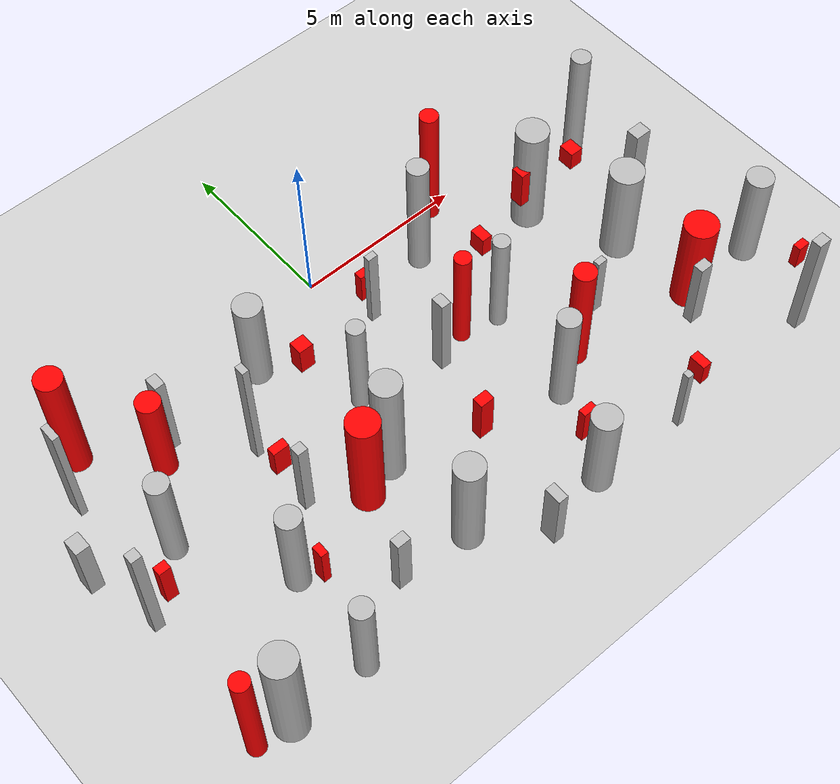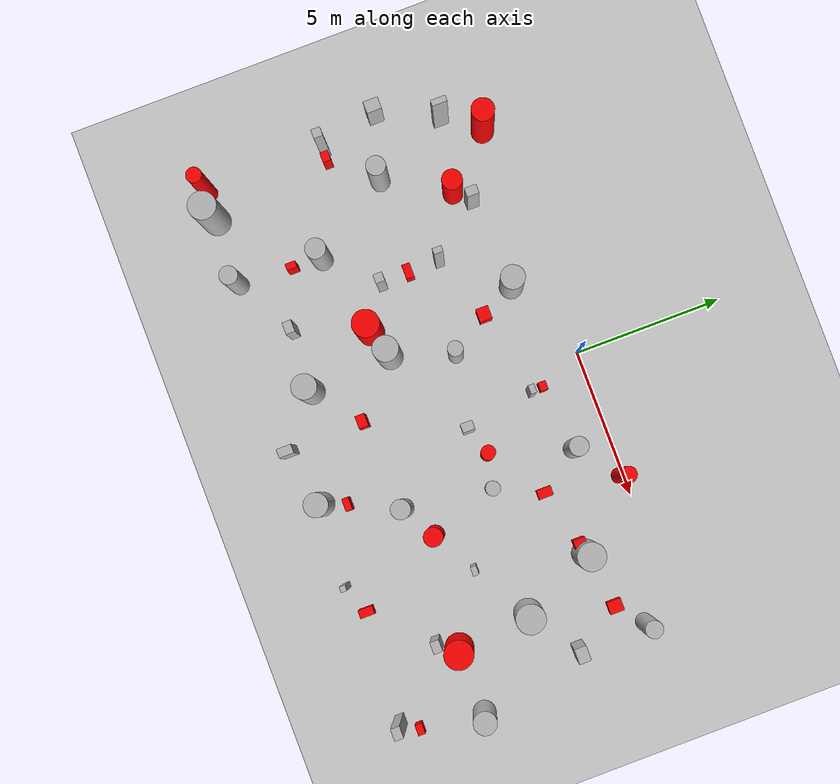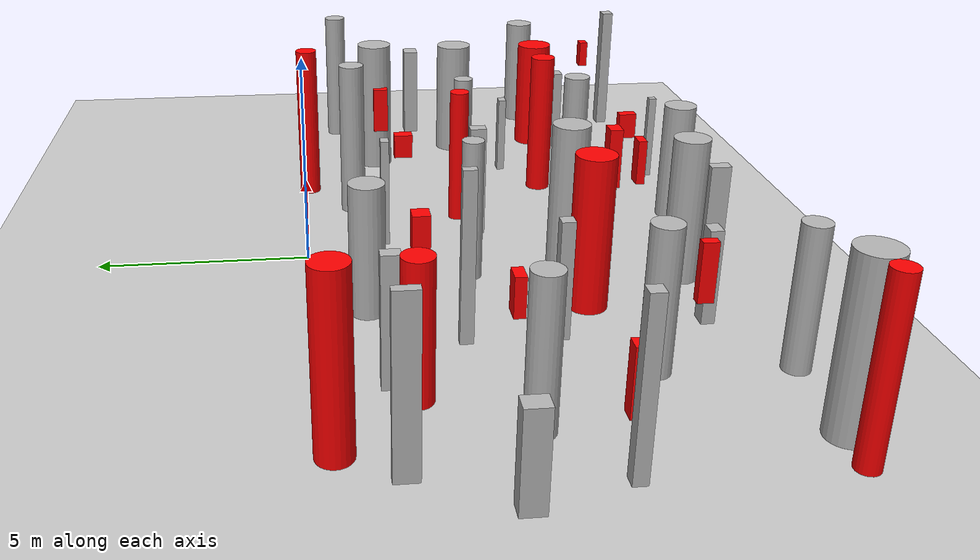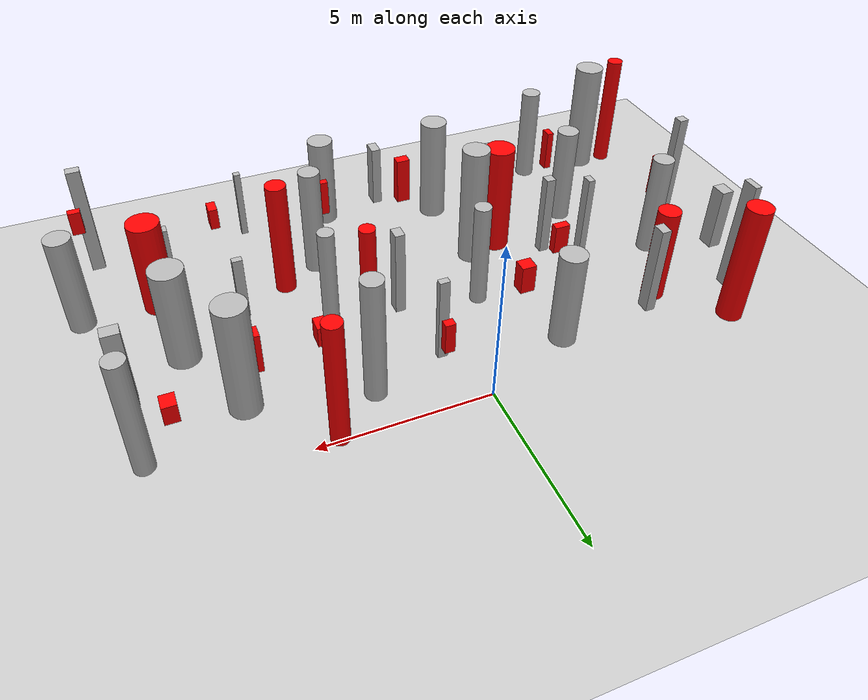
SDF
<sdf version="1.7">
 <world name="default">
  <model name="ground_plane">
   <static>1</static>
   <link name="link">
    <collision name="collision">
     <geometry><plane><normal>0 0 1</normal><size>100 100</size></plane></geometry>
     <surface>
      <contact><collide_bitmask>65535</collide_bitmask></contact>
      <friction><ode><mu>100</mu><mu2>50</mu2></ode></friction>
     </surface>
    </collision>
    <visual name="visual">
     <cast_shadows>0</cast_shadows>
     <geometry><plane><normal>0 0 1</normal><size>100 100</size></plane></geometry>
     <material>
      <script><uri>file://media/materials/scripts/gazebo.material</uri><name>Gazebo/Grey</name></script>
     </material>
    </visual>
   </link>
  </model>
  <model name="cylinder_1_0.6_0.6_4.0">
   <static>true</static>
   <pose>2.917882261333123 -1.2482557747461502 1.9818313802505148 0 0 0</pose>
   <link name="link">
    <visual name="visual">
     <geometry>
      <cylinder><radius>0.3150324556477333</radius><length>3.9636627605010295</length></cylinder>
     </geometry>
    </visual>
   </link>
  </model>
  <model name="cylinder_3_0.9_0.9_3.8">
   <static>true</static>
   <pose>-8.257414005969185 -9.595632051193485 1.8890783754749252 0 0 0</pose>
   <link name="link">
    <visual name="visual">
     <geometry>
      <cylinder><radius>0.46100364447404574</radius><length>3.7781567509498504</length></cylinder>
     </geometry>
    </visual>
   </link>
  </model>
  <model name="cylinder_5_0.6_0.6_3.5">
   <static>true</static>
   <pose>2.798420426550477 -7.132934251819072 1.760924160875036 0 0 0</pose>
   <link name="link">
    <visual name="visual">
     <geometry>
      <cylinder><radius>0.3243985819971571</radius><length>3.521848321750072</length></cylinder>
     </geometry>
    </visual>
   </link>
  </model>
  <model name="cylinder_8_0.8_0.8_3.1">
   <static>true</static>
   <pose>-2.80984198852428 -1.259360924013171 1.530112735814635 0 0 0</pose>
   <link name="link">
    <visual name="visual">
     <geometry><cylinder><radius>0.4000300146337003</radius><length>3.06022547162927</length></cylinder></geometry>
    </visual>
   </link>
  </model>
  <model name="cylinder_10_0.7_0.7_3.3">
   <static>true</static>
   <pose>-5.822464878103306 -6.773809642300074 1.626645801269891 0 0 0</pose>
   <link name="link">
    <visual name="visual">
     <geometry>
      <cylinder><radius>0.3398932318568919</radius><length>3.253291602539782</length></cylinder>
     </geometry>
    </visual>
   </link>
  </model>
  <model name="cylinder_13_0.6_0.6_3.3">
   <static>true</static>
   <pose>-7.596068775736622 -4.077196049557101 1.658991589696988 0 0 0</pose>
   <link name="link">
    <visual name="visual">
     <geometry><cylinder><radius>0.324278898354401</radius><length>3.317983179393976</length></cylinder></geometry>
    </visual>
   </link>
  </model>
  <model name="cylinder_16_0.8_0.8_3.0">
   <static>true</static>
   <pose>1.7302586962016626 -9.597849076250128 1.5023477380962735 0 0 0</pose>
   <link name="link">
    <visual name="visual">
     <geometry>
      <cylinder><radius>0.4033449610388691</radius><length>3.004695476192547</length></cylinder>
     </geometry>
    </visual>
   </link>
  </model>
  <model name="cylinder_17_0.6_0.6_3.7">
   <static>true</static>
   <pose>9.054980230339702 -1.0574924276474533 1.849739637658752 0 0 0</pose>
   <link name="link">
    <visual name="visual">
     <geometry>
      <cylinder><radius>0.2892310852565401</radius><length>3.699479275317504</length></cylinder>
     </geometry>
    </visual>
   </link>
  </model>
  <model name="cylinder_18_0.9_0.9_3.6">
   <static>true</static>
   <pose>6.275956394049544 -2.0698851830603076 1.7906364363179295 0 0 0</pose>
   <link name="link">
    <visual name="visual">
     <geometry>
      <cylinder><radius>0.4645206085564558</radius><length>3.581272872635859</length></cylinder>
     </geometry>
    </visual>
   </link>
  </model>
  <model name="cylinder_20_0.5_0.5_3.4">
   <static>true</static>
   <pose>3.2034707498537003 -4.198447855791119 1.714384350472883 0 0 0</pose>
   <link name="link">
    <visual name="visual">
     <geometry>
      <cylinder><radius>0.24064221926673507</radius><length>3.428768700945766</length></cylinder>
     </geometry>
    </visual>
   </link>
  </model>
  <model name="cylinder_21_0.8_0.8_3.2">
   <static>true</static>
   <pose>9.976940131357331 -7.011033906840125 1.5812464673381874 0 0 0</pose>
   <link name="link">
    <visual name="visual">
     <geometry>
      <cylinder><radius>0.3846678692851533</radius><length>3.162492934676375</length></cylinder>
     </geometry>
    </visual>
   </link>
  </model>
  <model name="cylinder_22_0.8_0.8_3.5">
   <static>true</static>
   <pose>-1.8563340554800067 -8.61666009089724 1.7267713413390344 0 0 0</pose>
   <link name="link">
    <visual name="visual">
     <geometry>
      <cylinder><radius>0.4166166798411044</radius><length>3.453542682678069</length></cylinder>
     </geometry>
    </visual>
   </link>
  </model>
  <model name="cylinder_24_0.6_0.6_3.2">
   <static>true</static>
   <pose>-6.000069502071998 -9.62956411078772 1.61196234403019 0 0 0</pose>
   <link name="link">
    <visual name="visual">
     <geometry>
      <cylinder><radius>0.30360550420907084</radius><length>3.22392468806038</length></cylinder>
     </geometry>
    </visual>
   </link>
  </model>
  <model name="cylinder_26_0.8_0.8_3.9">
   <static>true</static>
   <pose>-2.035578755678163 -5.803125020497557 1.9721861949919668 0 0 0</pose>
   <link name="link">
    <visual name="visual">
     <geometry>
      <cylinder><radius>0.4218652385147863</radius><length>3.9443723899839336</length></cylinder>
     </geometry>
    </visual>
   </link>
  </model>
  <model name="cylinder_27_0.5_0.5_3.4">
   <static>true</static>
   <pose>-1.3116674888375854 -3.764082360117948 1.6888759196462404 0 0 0</pose>
   <link name="link">
    <visual name="visual">
     <geometry>
      <cylinder><radius>0.25388110326789043</radius><length>3.377751839292481</length></cylinder>
     </geometry>
    </visual>
   </link>
  </model>
  <model name="cylinder_29_1.0_1.0_3.2">
   <static>true</static>
   <pose>7.453013108947907 -4.529159303687285 1.592817972152976 0 0 0</pose>
   <link name="link">
    <visual name="visual">
     <geometry>
      <cylinder><radius>0.48583749709158336</radius><length>3.185635944305952</length></cylinder>
     </geometry>
    </visual>
   </link>
  </model>
  <model name="box_0_0.3_0.4_2.9">
   <static>true</static>
   <pose>-5.850598491177812 -1.5062906249698749 1.4635754243648107 0 0 0</pose>
   <link name="link">
    <visual name="visual"><geometry><box><size>0.3 0.4 2.9</size></box></geometry></visual>
   </link>
  </model>
  <model name="box_1_0.4_0.3_2.3">
   <static>true</static>
   <pose>7.277112118464629 -7.649362880759338 1.1320681063451534 0 0 0</pose>
   <link name="link">
    <visual name="visual"><geometry><box><size>0.4 0.3 2.3</size></box></geometry></visual>
   </link>
  </model>
  <model name="box_3_0.2_0.2_2.3">
   <static>true</static>
   <pose>4.511887284211575 -9.771450827499379 1.1469466454003752 0 0 0</pose>
   <link name="link">
    <visual name="visual"><geometry><box><size>0.2 0.2 2.3</size></box></geometry></visual>
   </link>
  </model>
  <model name="box_6_0.2_0.5_3.7">
   <static>true</static>
   <pose>-8.745740959533086 -1.5193549622031615 1.849038308428511 0 0 0</pose>
   <link name="link">
    <visual name="visual"><geometry><box><size>0.2 0.5 3.7</size></box></geometry></visual>
   </link>
  </model>
  <model name="box_9_0.3_0.4_2.8">
   <static>true</static>
   <pose>1.09375617322838 -4.258969601607405 1.4148568693335641 0 0 0</pose>
   <link name="link">
    <visual name="visual"><geometry><box><size>0.3 0.4 2.8</size></box></geometry></visual>
   </link>
  </model>
  <model name="box_11_0.4_0.3_3.6">
   <static>true</static>
   <pose>9.255406396804847 -9.662566532599206 1.8136786497018633 0 0 0</pose>
   <link name="link">
    <visual name="visual"><geometry><box><size>0.4 0.3 3.6</size></box></geometry></visual>
   </link>
  </model>
  <model name="box_12_0.3_0.3_2.7">
   <static>true</static>
   <pose>-4.320000464757978 -5.23173438151884 1.3679275805370414 0 0 0</pose>
   <link name="link">
    <visual name="visual"><geometry><box><size>0.3 0.3 2.7</size></box></geometry></visual>
   </link>
  </model>
  <model name="box_17_0.3_0.2_2.7">
   <static>true</static>
   <pose>0.6983370985416784 -1.9151276412148235 1.3650998770600098 0 0 0</pose>
   <link name="link">
    <visual name="visual"><geometry><box><size>0.3 0.2 2.7</size></box></geometry></visual>
   </link>
  </model>
  <model name="box_20_0.4_0.3_2.2">
   <static>true</static>
   <pose>-3.916026168011843 -8.492818618333192 1.107617705149582 0 0 0</pose>
   <link name="link">
    <visual name="visual"><geometry><box><size>0.4 0.3 2.2</size></box></geometry></visual>
   </link>
  </model>
  <model name="box_21_0.3_0.5_2.1">
   <static>true</static>
   <pose>-0.24647352923584975 -9.989080702060086 1.0635537748361585 0 0 0</pose>
   <link name="link">
    <visual name="visual"><geometry><box><size>0.3 0.5 2.1</size></box></geometry></visual>
   </link>
  </model>
  <model name="box_22_0.2_0.3_3.9">
   <static>true</static>
   <pose>-4.343262956478342 -3.207379116676017 1.96319729526038 0 0 0</pose>
   <link name="link">
    <visual name="visual"><geometry><box><size>0.2 0.3 3.9</size></box></geometry></visual>
   </link>
  </model>
  <model name="box_23_0.3_0.2_2.1">
   <static>true</static>
   <pose>5.4622010501083835 -5.662594998179187 1.042924190608832 0 0 0</pose>
   <link name="link">
    <visual name="visual"><geometry><box><size>0.3 0.2 2.1</size></box></geometry></visual>
   </link>
  </model>
  <model name="box_25_0.5_0.4_2.6">
   <static>true</static>
   <pose>9.122463191199198 -3.3911885479431225 1.2808594946322427 0 0 0</pose>
   <link name="link">
    <visual name="visual"><geometry><box><size>0.5 0.4 2.6</size></box></geometry></visual>
   </link>
  </model>
  <model name="box_28_0.3_0.3_3.7">
   <static>true</static>
   <pose>-9.152719058171135 -5.44518013305427 1.8369903652886839 0 0 0</pose>
   <link name="link">
    <visual name="visual"><geometry><box><size>0.3 0.3 3.7</size></box></geometry></visual>
   </link>
  </model>
  <model name="box_29_0.4_0.5_2.1">
   <static>true</static>
   <pose>-9.68523520659075 -3.482903159924076 1.028362934230075 0 0 0</pose>
   <link name="link">
    <visual name="visual"><geometry><box><size>0.4 0.5 2.1</size></box></geometry></visual>
   </link>
  </model>
  <model name="dynamic_cylinder_2_0.8_0.8_3.8">
   <static>true</static>
   <pose>-7.974315060705157 -0.32998683232079884 1.9221635069914111 0 0 0</pose>
   <link name="link">
    <visual name="visual">
     <geometry>
      <cylinder><radius>0.3798744039121985</radius><length>3.8443270139828223</length></cylinder>
     </geometry>
     <material><ambient>1 0 0 1</ambient><diffuse>1 0 0 1</diffuse><specular>0.5 0.5 0.5 1</specular></material>
    </visual>
   </link>
   <plugin name="obstacle_motion" filename="/home/he/quad/navigation/DRL-robot-navigation/catkin_ws/src/multi_robot_scenario/plugins/libobstaclePathPlugin.so">
    <orientation>false</orientation>
    <loop>0</loop>
    <velocity>0.3154651571670559</velocity>
    <path>
     <waypoint>-7.974315060705157 -0.32998683232079884 1.9221635069914111</waypoint>
     <waypoint>0.2481696404967959 -3.965968507206936 1.9221635069914111</waypoint>
    </path>
   </plugin>
  </model>
  <model name="dynamic_cylinder_5_0.7_0.7_3.1">
   <static>true</static>
   <pose>-6.374646757043152 -1.97223506750559 1.5405268943170307 0 0 0</pose>
   <link name="link">
    <visual name="visual">
     <geometry>
      <cylinder><radius>0.33637696016914487</radius><length>3.0810537886340614</length></cylinder>
     </geometry>
     <material><ambient>1 0 0 1</ambient><diffuse>1 0 0 1</diffuse><specular>0.5 0.5 0.5 1</specular></material>
    </visual>
   </link>
   <plugin name="obstacle_motion" filename="/home/he/quad/navigation/DRL-robot-navigation/catkin_ws/src/multi_robot_scenario/plugins/libobstaclePathPlugin.so">
    <orientation>false</orientation>
    <loop>0</loop>
    <velocity>0.4807413971602644</velocity>
    <path>
     <waypoint>-6.374646757043152 -1.97223506750559 1.5405268943170307</waypoint>
     <waypoint>8.931141721480035 -7.337036169284636 1.5405268943170307</waypoint>
    </path>
   </plugin>
  </model>
  <model name="dynamic_cylinder_6_0.9_0.9_3.6">
   <static>true</static>
   <pose>-3.0182531602464913 -6.116115847730619 1.80009221199072 0 0 0</pose>
   <link name="link">
    <visual name="visual">
     <geometry>
      <cylinder><radius>0.45119791282438926</radius><length>3.60018442398144</length></cylinder>
     </geometry>
     <material><ambient>1 0 0 1</ambient><diffuse>1 0 0 1</diffuse><specular>0.5 0.5 0.5 1</specular></material>
    </visual>
   </link>
   <plugin name="obstacle_motion" filename="/home/he/quad/navigation/DRL-robot-navigation/catkin_ws/src/multi_robot_scenario/plugins/libobstaclePathPlugin.so">
    <orientation>false</orientation>
    <loop>0</loop>
    <velocity>0.22500159467716208</velocity>
    <path>
     <waypoint>-3.0182531602464913 -6.116115847730619 1.80009221199072</waypoint>
     <waypoint>0.45648565847695544 -9.111132234808876 1.80009221199072</waypoint>
    </path>
   </plugin>
  </model>
  <model name="dynamic_cylinder_11_1.0_1.0_3.1">
   <static>true</static>
   <pose>7.710452748977541 -7.039226414444759 1.5301897410127983 0 0 0</pose>
   <link name="link">
    <visual name="visual">
     <geometry>
      <cylinder><radius>0.48332123644086683</radius><length>3.0603794820255965</length></cylinder>
     </geometry>
     <material><ambient>1 0 0 1</ambient><diffuse>1 0 0 1</diffuse><specular>0.5 0.5 0.5 1</specular></material>
    </visual>
   </link>
   <plugin name="obstacle_motion" filename="/home/he/quad/navigation/DRL-robot-navigation/catkin_ws/src/multi_robot_scenario/plugins/libobstaclePathPlugin.so">
    <orientation>false</orientation>
    <loop>0</loop>
    <velocity>0.6147627506164867</velocity>
    <path>
     <waypoint>7.710452748977541 -7.039226414444759 1.5301897410127983</waypoint>
     <waypoint>-9.700474795619611 -0.8522260242837802 1.5301897410127983</waypoint>
    </path>
   </plugin>
  </model>
  <model name="dynamic_cylinder_13_0.5_0.5_4.0">
   <static>true</static>
   <pose>4.285996925874873 -0.12269026158925733 1.999099476422305 0 0 0</pose>
   <link name="link">
    <visual name="visual">
     <geometry><cylinder><radius>0.2681053315388174</radius><length>3.99819895284461</length></cylinder></geometry>
     <material><ambient>1 0 0 1</ambient><diffuse>1 0 0 1</diffuse><specular>0.5 0.5 0.5 1</specular></material>
    </visual>
   </link>
   <plugin name="obstacle_motion" filename="/home/he/quad/navigation/DRL-robot-navigation/catkin_ws/src/multi_robot_scenario/plugins/libobstaclePathPlugin.so">
    <orientation>false</orientation>
    <loop>0</loop>
    <velocity>0.29772294755562134</velocity>
    <path>
     <waypoint>4.285996925874873 -0.12269026158925733 1.999099476422305</waypoint>
     <waypoint>-7.47264949338793 7.536412408012616 1.999099476422305</waypoint>
    </path>
   </plugin>
  </model>
  <model name="dynamic_cylinder_16_0.6_0.6_3.7">
   <static>true</static>
   <pose>3.962327514137991 -6.4733418507102165 1.8659651388407679 0 0 0</pose>
   <link name="link">
    <visual name="visual">
     <geometry>
      <cylinder><radius>0.31267656873843774</radius><length>3.7319302776815357</length></cylinder>
     </geometry>
     <material><ambient>1 0 0 1</ambient><diffuse>1 0 0 1</diffuse><specular>0.5 0.5 0.5 1</specular></material>
    </visual>
   </link>
   <plugin name="obstacle_motion" filename="/home/he/quad/navigation/DRL-robot-navigation/catkin_ws/src/multi_robot_scenario/plugins/libobstaclePathPlugin.so">
    <orientation>false</orientation>
    <loop>0</loop>
    <velocity>0.3422263312509606</velocity>
    <path>
     <waypoint>3.962327514137991 -6.4733418507102165 1.8659651388407679</waypoint>
     <waypoint>4.4208681686497915 -4.040594716861401 1.8659651388407679</waypoint>
    </path>
   </plugin>
  </model>
  <model name="dynamic_cylinder_18_0.5_0.5_3.4">
   <static>true</static>
   <pose>2.100860336209447 -3.9419038266032995 1.7134097575552705 0 0 0</pose>
   <link name="link">
    <visual name="visual">
     <geometry><cylinder><radius>0.239479055110007</radius><length>3.426819515110541</length></cylinder></geometry>
     <material><ambient>1 0 0 1</ambient><diffuse>1 0 0 1</diffuse><specular>0.5 0.5 0.5 1</specular></material>
    </visual>
   </link>
   <plugin name="obstacle_motion" filename="/home/he/quad/navigation/DRL-robot-navigation/catkin_ws/src/multi_robot_scenario/plugins/libobstaclePathPlugin.so">
    <orientation>false</orientation>
    <loop>0</loop>
    <velocity>0.26810926491253906</velocity>
    <path>
     <waypoint>2.100860336209447 -3.9419038266032995 1.7134097575552705</waypoint>
     <waypoint>-6.606437688518603 -6.810618153176824 1.7134097575552705</waypoint>
    </path>
   </plugin>
  </model>
  <model name="dynamic_cylinder_19_0.5_0.5_3.9">
   <static>true</static>
   <pose>-9.215789215722058 -9.495363454243677 1.9520254097176408 0 0 0</pose>
   <link name="link">
    <visual name="visual">
     <geometry>
      <cylinder><radius>0.25419818646219033</radius><length>3.9040508194352816</length></cylinder>
     </geometry>
     <material><ambient>1 0 0 1</ambient><diffuse>1 0 0 1</diffuse><specular>0.5 0.5 0.5 1</specular></material>
    </visual>
   </link>
   <plugin name="obstacle_motion" filename="/home/he/quad/navigation/DRL-robot-navigation/catkin_ws/src/multi_robot_scenario/plugins/libobstaclePathPlugin.so">
    <orientation>false</orientation>
    <loop>0</loop>
    <velocity>0.03521980457540708</velocity>
    <path>
     <waypoint>-9.215789215722058 -9.495363454243677 1.9520254097176408</waypoint>
     <waypoint>-0.7629311567612582 4.524865626122541 1.9520254097176408</waypoint>
    </path>
   </plugin>
  </model>
  <model name="dynamic_box_1_0.4_0.2_1.2">
   <static>true</static>
   <pose>2.0388739622622474 -8.732619909023034 1.413106583636322 0 0 0</pose>
   <link name="link">
    <visual name="visual">
     <geometry><box><size>0.4306996768117569 0.22494943154243274 1.186783367643289</size></box></geometry>
     <material><ambient>1 0 0 1</ambient><diffuse>1 0 0 1</diffuse><specular>0.5 0.5 0.5 1</specular></material>
    </visual>
   </link>
   <plugin name="obstacle_motion" filename="/home/he/quad/navigation/DRL-robot-navigation/catkin_ws/src/multi_robot_scenario/plugins/libobstaclePathPlugin.so">
    <orientation>false</orientation>
    <loop>0</loop>
    <velocity>0.6437876914287857</velocity>
    <path>
     <waypoint>2.0388739622622474 -8.732619909023034 1.413106583636322</waypoint>
     <waypoint>4.450001750198441 -5.225223184586014 2.4810468619679416</waypoint>
    </path>
   </plugin>
  </model>
  <model name="dynamic_box_2_0.4_0.2_0.8">
   <static>true</static>
   <pose>9.49548845020913 -9.01429481852883 2.2440318268872366 0 0 0</pose>
   <link name="link">
    <visual name="visual">
     <geometry><box><size>0.35970082126919667 0.23448564489113446 0.7542400891795997</size></box></geometry>
     <material><ambient>1 0 0 1</ambient><diffuse>1 0 0 1</diffuse><specular>0.5 0.5 0.5 1</specular></material>
    </visual>
   </link>
   <plugin name="obstacle_motion" filename="/home/he/quad/navigation/DRL-robot-navigation/catkin_ws/src/multi_robot_scenario/plugins/libobstaclePathPlugin.so">
    <orientation>false</orientation>
    <loop>0</loop>
    <velocity>0.87455030332486</velocity>
    <path>
     <waypoint>9.49548845020913 -9.01429481852883 2.2440318268872366</waypoint>
     <waypoint>-4.942922445034776 5.156482153817809 0.37726744345601204</waypoint>
    </path>
   </plugin>
  </model>
  <model name="dynamic_box_3_0.4_0.4_0.9">
   <static>true</static>
   <pose>-2.1274050832544944 -2.4890128983091486 1.5823353470144847 0 0 0</pose>
   <link name="link">
    <visual name="visual">
     <geometry><box><size>0.4414468894969167 0.41401112162436804 0.8920217173051701</size></box></geometry>
     <material><ambient>1 0 0 1</ambient><diffuse>1 0 0 1</diffuse><specular>0.5 0.5 0.5 1</specular></material>
    </visual>
   </link>
   <plugin name="obstacle_motion" filename="/home/he/quad/navigation/DRL-robot-navigation/catkin_ws/src/multi_robot_scenario/plugins/libobstaclePathPlugin.so">
    <orientation>false</orientation>
    <loop>0</loop>
    <velocity>0.5719882670476908</velocity>
    <path>
     <waypoint>-2.1274050832544944 -2.4890128983091486 1.5823353470144847</waypoint>
     <waypoint>3.3595414492043556 6.8166048482449995 1.4404736526073303</waypoint>
    </path>
   </plugin>
  </model>
  <model name="dynamic_box_5_0.4_0.3_1.5">
   <static>true</static>
   <pose>-0.23115066539448215 -7.314659525643503 2.4353618852635526 0 0 0</pose>
   <link name="link">
    <visual name="visual">
     <geometry><box><size>0.41159203183377857 0.3097028999377755 1.4682117713312417</size></box></geometry>
     <material><ambient>1 0 0 1</ambient><diffuse>1 0 0 1</diffuse><specular>0.5 0.5 0.5 1</specular></material>
    </visual>
   </link>
   <plugin name="obstacle_motion" filename="/home/he/quad/navigation/DRL-robot-navigation/catkin_ws/src/multi_robot_scenario/plugins/libobstaclePathPlugin.so">
    <orientation>false</orientation>
    <loop>0</loop>
    <velocity>0.6476536611679069</velocity>
    <path>
     <waypoint>-0.23115066539448215 -7.314659525643503 2.4353618852635526</waypoint>
     <waypoint>1.4998065454822864 4.798749615657414 2.1434351928822037</waypoint>
    </path>
   </plugin>
  </model>
  <model name="dynamic_box_7_0.4_0.5_0.6">
   <static>true</static>
   <pose>8.165461728308287 -1.8195697681425056 0.9655075985673978 0 0 0</pose>
   <link name="link">
    <visual name="visual">
     <geometry><box><size>0.4124224800463273 0.4765747397745695 0.6020195313638074</size></box></geometry>
     <material><ambient>1 0 0 1</ambient><diffuse>1 0 0 1</diffuse><specular>0.5 0.5 0.5 1</specular></material>
    </visual>
   </link>
   <plugin name="obstacle_motion" filename="/home/he/quad/navigation/DRL-robot-navigation/catkin_ws/src/multi_robot_scenario/plugins/libobstaclePathPlugin.so">
    <orientation>false</orientation>
    <loop>0</loop>
    <velocity>0.8939247224732105</velocity>
    <path>
     <waypoint>8.165461728308287 -1.8195697681425056 0.9655075985673978</waypoint>
     <waypoint>9.790501658900542 2.888311284740263 1.0330058186242654</waypoint>
    </path>
   </plugin>
  </model>
  <model name="dynamic_box_8_0.2_0.3_1.3">
   <static>true</static>
   <pose>-5.654487399439834 -7.7015130002353605 2.1065576235573458 0 0 0</pose>
   <link name="link">
    <visual name="visual">
     <geometry><box><size>0.2137551065306843 0.33916840239779517 1.3168251414784375</size></box></geometry>
     <material><ambient>1 0 0 1</ambient><diffuse>1 0 0 1</diffuse><specular>0.5 0.5 0.5 1</specular></material>
    </visual>
   </link>
   <plugin name="obstacle_motion" filename="/home/he/quad/navigation/DRL-robot-navigation/catkin_ws/src/multi_robot_scenario/plugins/libobstaclePathPlugin.so">
    <orientation>false</orientation>
    <loop>0</loop>
    <velocity>0.7697683025548154</velocity>
    <path>
     <waypoint>-5.654487399439834 -7.7015130002353605 2.1065576235573458</waypoint>
     <waypoint>-5.932083160026087 -6.477923244210078 1.298027241531363</waypoint>
    </path>
   </plugin>
  </model>
  <model name="dynamic_box_10_0.3_0.5_0.6">
   <static>true</static>
   <pose>3.92647370161011 -2.673512583384907 1.3748865345173962 0 0 0</pose>
   <link name="link">
    <visual name="visual">
     <geometry><box><size>0.32188174907183564 0.48892816706357817 0.6330759901841663</size></box></geometry>
     <material><ambient>1 0 0 1</ambient><diffuse>1 0 0 1</diffuse><specular>0.5 0.5 0.5 1</specular></material>
    </visual>
   </link>
   <plugin name="obstacle_motion" filename="/home/he/quad/navigation/DRL-robot-navigation/catkin_ws/src/multi_robot_scenario/plugins/libobstaclePathPlugin.so">
    <orientation>false</orientation>
    <loop>0</loop>
    <velocity>0.8867273357609563</velocity>
    <path>
     <waypoint>3.92647370161011 -2.673512583384907 1.3748865345173962</waypoint>
     <waypoint>0.8561293750562715 4.281075701477725 1.3496498772904753</waypoint>
    </path>
   </plugin>
  </model>
  <model name="dynamic_box_11_0.3_0.3_1.0">
   <static>true</static>
   <pose>0.6901788001158415 -1.5089408788398107 1.0731979943213033 0 0 0</pose>
   <link name="link">
    <visual name="visual">
     <geometry><box><size>0.30114473409948544 0.25707815267699974 1.000537458803136</size></box></geometry>
     <material><ambient>1 0 0 1</ambient><diffuse>1 0 0 1</diffuse><specular>0.5 0.5 0.5 1</specular></material>
    </visual>
   </link>
   <plugin name="obstacle_motion" filename="/home/he/quad/navigation/DRL-robot-navigation/catkin_ws/src/multi_robot_scenario/plugins/libobstaclePathPlugin.so">
    <orientation>false</orientation>
    <loop>0</loop>
    <velocity>0.6172749510335154</velocity>
    <path>
     <waypoint>0.6901788001158415 -1.5089408788398107 1.0731979943213033</waypoint>
     <waypoint>0.03182941881535051 7.58834924048336 1.0502815308029352</waypoint>
    </path>
   </plugin>
  </model>
  <model name="dynamic_box_12_0.3_0.3_1.4">
   <static>true</static>
   <pose>-8.603713940806102 -5.470174441179568 1.6745153341029377 0 0 0</pose>
   <link name="link">
    <visual name="visual">
     <geometry><box><size>0.3349584601722736 0.2681386450697971 1.4246228121426285</size></box></geometry>
     <material><ambient>1 0 0 1</ambient><diffuse>1 0 0 1</diffuse><specular>0.5 0.5 0.5 1</specular></material>
    </visual>
   </link>
   <plugin name="obstacle_motion" filename="/home/he/quad/navigation/DRL-robot-navigation/catkin_ws/src/multi_robot_scenario/plugins/libobstaclePathPlugin.so">
    <orientation>false</orientation>
    <loop>0</loop>
    <velocity>0.987393630367355</velocity>
    <path>
     <waypoint>-8.603713940806102 -5.470174441179568 1.6745153341029377</waypoint>
     <waypoint>-4.969545236627743 7.533637844460962 1.3608571571553365</waypoint>
    </path>
   </plugin>
  </model>
  <model name="dynamic_box_15_0.3_0.5_0.7">
   <static>true</static>
   <pose>5.497308984503757 -9.394231796881865 1.1714840901642574 0 0 0</pose>
   <link name="link">
    <visual name="visual">
     <geometry><box><size>0.28322541255079947 0.48868397339827946 0.7151825792421572</size></box></geometry>
     <material><ambient>1 0 0 1</ambient><diffuse>1 0 0 1</diffuse><specular>0.5 0.5 0.5 1</specular></material>
    </visual>
   </link>
   <plugin name="obstacle_motion" filename="/home/he/quad/navigation/DRL-robot-navigation/catkin_ws/src/multi_robot_scenario/plugins/libobstaclePathPlugin.so">
    <orientation>false</orientation>
    <loop>0</loop>
    <velocity>0.6695592070172642</velocity>
    <path>
     <waypoint>5.497308984503757 -9.394231796881865 1.1714840901642574</waypoint>
     <waypoint>-9.109807457027589 -5.043227060184606 0.7433526951369753</waypoint>
    </path>
   </plugin>
  </model>
  <model name="dynamic_box_16_0.5_0.3_1.0">
   <static>true</static>
   <pose>-4.328845697947923 -4.277047920067916 1.1076607261292448 0 0 0</pose>
   <link name="link">
    <visual name="visual">
     <geometry><box><size>0.4817235069641296 0.266712040769843 0.9616393613188368</size></box></geometry>
     <material><ambient>1 0 0 1</ambient><diffuse>1 0 0 1</diffuse><specular>0.5 0.5 0.5 1</specular></material>
    </visual>
   </link>
   <plugin name="obstacle_motion" filename="/home/he/quad/navigation/DRL-robot-navigation/catkin_ws/src/multi_robot_scenario/plugins/libobstaclePathPlugin.so">
    <orientation>false</orientation>
    <loop>0</loop>
    <velocity>0.6836257062800852</velocity>
    <path>
     <waypoint>-4.328845697947923 -4.277047920067916 1.1076607261292448</waypoint>
     <waypoint>-6.18299991671692 8.038472652586353 2.19761594875279</waypoint>
    </path>
   </plugin>
  </model>
  <model name="dynamic_box_18_0.5_0.4_1.2">
   <static>true</static>
   <pose>5.90505624448374 -2.204271544257626 1.7877453704102937 0 0 0</pose>
   <link name="link">
    <visual name="visual">
     <geometry><box><size>0.4892061171301683 0.39858461965205944 1.23832475679861</size></box></geometry>
     <material><ambient>1 0 0 1</ambient><diffuse>1 0 0 1</diffuse><specular>0.5 0.5 0.5 1</specular></material>
    </visual>
   </link>
   <plugin name="obstacle_motion" filename="/home/he/quad/navigation/DRL-robot-navigation/catkin_ws/src/multi_robot_scenario/plugins/libobstaclePathPlugin.so">
    <orientation>false</orientation>
    <loop>0</loop>
    <velocity>0.6296707539935127</velocity>
    <path>
     <waypoint>5.90505624448374 -2.204271544257626 1.7877453704102937</waypoint>
     <waypoint>-3.9159864830626168 0.820911991099301 1.2206161899685855</waypoint>
    </path>
   </plugin>
  </model>
 </world>
</sdf>
